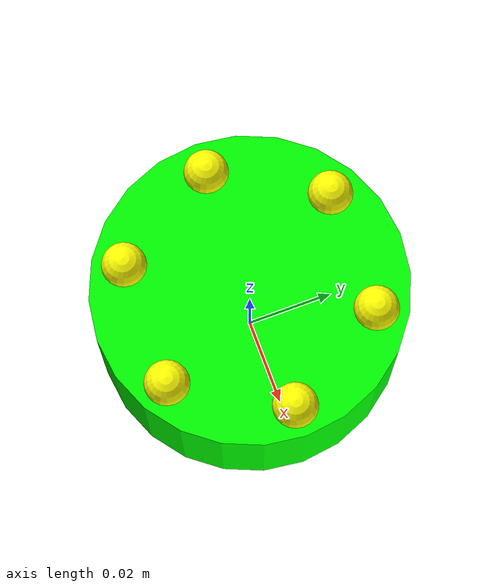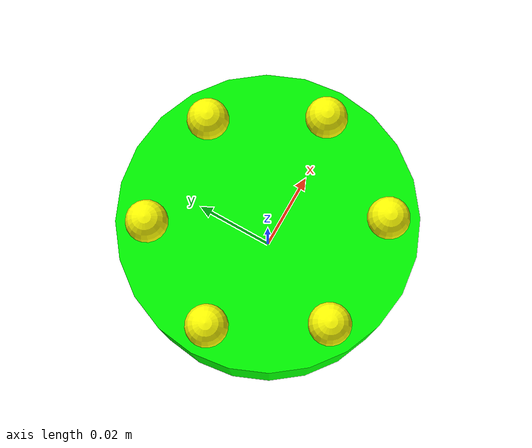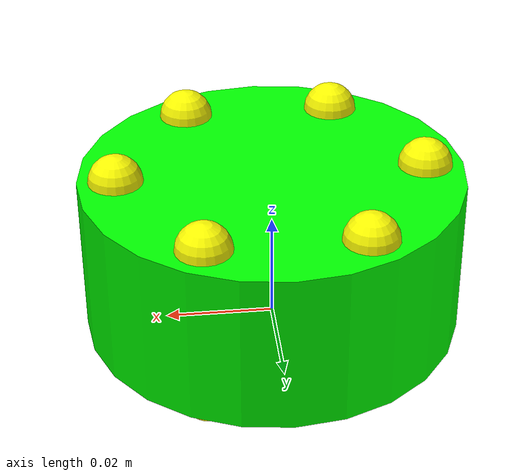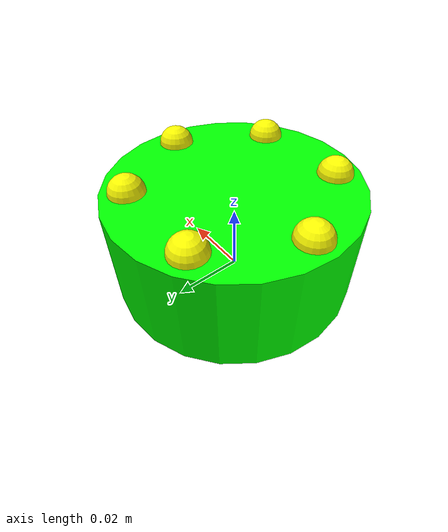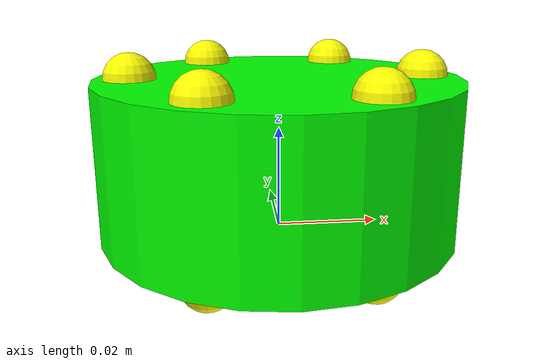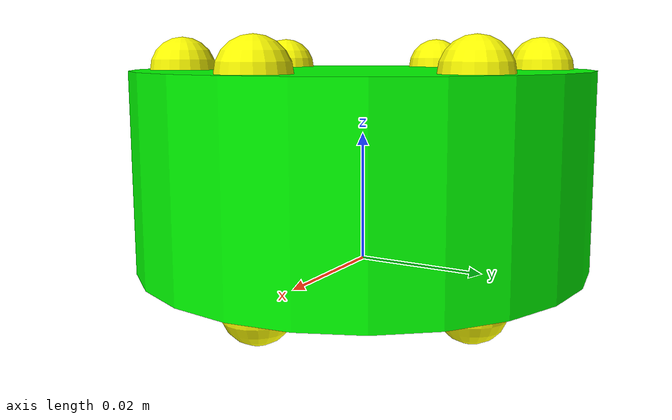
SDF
<?xml version="1.0" ?>
<sdf version="1.4">
  <model name="puck">
    <static>false</static>
    <link name="cylinder">
      <pose>0 0 0.015 0 0 0 </pose>
      <gravity>true</gravity>
      <inertial>
        <mass>50</mass>
      </inertial>
      <collision name="cylinder_collision">
        <geometry>
          <cylinder>
            <radius>0.0375</radius>
	    <length>0.03</length>
          </cylinder>
        </geometry>
	<surface>
	  <friction>
	    <ode>
	      <mu>1.0</mu>
              <mu2>1.0</mu2>
              <slip1>0.0</slip1>
              <slip2>0.0</slip2>
	    </ode>
	  </friction>
	</surface>
      </collision>
      <collision name="top_collision">
        <geometry>
          <box>
	    <size>0.053 0.053 0.03</size>
          </box>
        </geometry>
      </collision>
      <visual name="cylinder_visual">
        <cast_shadows>false</cast_shadows>
        <geometry>
          <cylinder>
            <radius>0.035</radius>
	    <length>0.03</length>
          </cylinder>
        </geometry>
	<material>
	  <!-- green -->
	  <ambient>0.0 1.0 0.0 1</ambient>
	  <diffuse>0.0 1.0 0.0 1</diffuse>
	</material>
      </visual>
      <visual name="noppel_up_0">
	<pose>0.028 0 0.015 0 0 0 </pose>
        <cast_shadows>false</cast_shadows>
        <geometry>
          <sphere>
            <radius>0.005</radius>
          </sphere>
        </geometry>
	<material>
	  <ambient>1.0 1.0 0.0 1</ambient>
	  <diffuse>1.0 1.0 0.0 1</diffuse>
	</material>
      </visual>
      <visual name="noppel_up_1">
	<pose>0.014 0.024 0.015 0 0 0 </pose>
        <cast_shadows>false</cast_shadows>
        <geometry>
          <sphere>
            <radius>0.005</radius>
          </sphere>
        </geometry>
	<material>
	  <ambient>1.0 1.0 0.0 1</ambient>
	  <diffuse>1.0 1.0 0.0 1</diffuse>
	</material>
      </visual>
      <visual name="noppel_up_2">
	<pose>-0.014 0.024 0.015 0 0 0 </pose>
        <cast_shadows>false</cast_shadows>
        <geometry>
          <sphere>
            <radius>0.005</radius>
          </sphere>
        </geometry>
	<material>
	  <ambient>1.0 1.0 0.0 1</ambient>
	  <diffuse>1.0 1.0 0.0 1</diffuse>
	</material>
      </visual>
      <visual name="noppel_up_3">
	<pose>-0.028 0 0.015 0 0 0 </pose>
        <cast_shadows>false</cast_shadows>
        <geometry>
          <sphere>
            <radius>0.005</radius>
          </sphere>
        </geometry>
	<material>
	  <ambient>1.0 1.0 0.0 1</ambient>
	  <diffuse>1.0 1.0 0.0 1</diffuse>
	</material>
      </visual>
      <visual name="noppel_up_4">
	<pose>-0.014 -0.024 0.015 0 0 0 </pose>
        <cast_shadows>false</cast_shadows>
        <geometry>
          <sphere>
            <radius>0.005</radius>
          </sphere>
        </geometry>
	<material>
	  <ambient>1.0 1.0 0.0 1</ambient>
	  <diffuse>1.0 1.0 0.0 1</diffuse>
	</material>
      </visual>
      <visual name="noppel_up_5">
	<pose>0.014 -0.024 0.015 0 0 0 </pose>
        <cast_shadows>false</cast_shadows>
        <geometry>
          <sphere>
            <radius>0.005</radius>
          </sphere>
        </geometry>
	<material>
	  <ambient>1.0 1.0 0.0 1</ambient>
	  <diffuse>1.0 1.0 0.0 1</diffuse>
	</material>
      </visual>
      <visual name="noppel_down_0">
	<pose>0.028 0 -0.015 0 0 0 </pose>
        <cast_shadows>false</cast_shadows>
        <geometry>
          <sphere>
            <radius>0.005</radius>
          </sphere>
        </geometry>
	<material>
	  <ambient>1.0 1.0 0.0 1</ambient>
	  <diffuse>1.0 1.0 0.0 1</diffuse>
	</material>
      </visual>
      <visual name="noppel_down_1">
	<pose>0.014 0.024 -0.015 0 0 0 </pose>
        <cast_shadows>false</cast_shadows>
        <geometry>
          <sphere>
            <radius>0.005</radius>
          </sphere>
        </geometry>
	<material>
	  <ambient>1.0 1.0 0.0 1</ambient>
	  <diffuse>1.0 1.0 0.0 1</diffuse>
	</material>
      </visual>
      <visual name="noppel_down_2">
	<pose>-0.014 0.024 -0.015 0 0 0 </pose>
        <cast_shadows>false</cast_shadows>
        <geometry>
          <sphere>
            <radius>0.005</radius>
          </sphere>
        </geometry>
	<material>
	  <ambient>1.0 1.0 0.0 1</ambient>
	  <diffuse>1.0 1.0 0.0 1</diffuse>
	</material>
      </visual>
      <visual name="noppel_down_3">
	<pose>-0.028 0 -0.015 0 0 0 </pose>
        <cast_shadows>false</cast_shadows>
        <geometry>
          <sphere>
            <radius>0.005</radius>
          </sphere>
        </geometry>
	<material>
	  <ambient>1.0 1.0 0.0 1</ambient>
	  <diffuse>1.0 1.0 0.0 1</diffuse>
	</material>
      </visual>
      <visual name="noppel_down_4">
	<pose>-0.014 -0.024 -0.015 0 0 0 </pose>
        <cast_shadows>false</cast_shadows>
        <geometry>
          <sphere>
            <radius>0.005</radius>
          </sphere>
        </geometry>
	<material>
	  <ambient>1.0 1.0 0.0 1</ambient>
	  <diffuse>1.0 1.0 0.0 1</diffuse>
	</material>
      </visual>
      <visual name="noppel_down_5">
	<pose>0.014 -0.024 -0.015 0 0 0 </pose>
        <cast_shadows>false</cast_shadows>
        <geometry>
          <sphere>
            <radius>0.005</radius>
          </sphere>
        </geometry>
	<material>
	  <ambient>1.0 1.0 0.0 1</ambient>
	  <diffuse>1.0 1.0 0.0 1</diffuse>
	</material>
      </visual>
    </link>
  </model>
</sdf>
